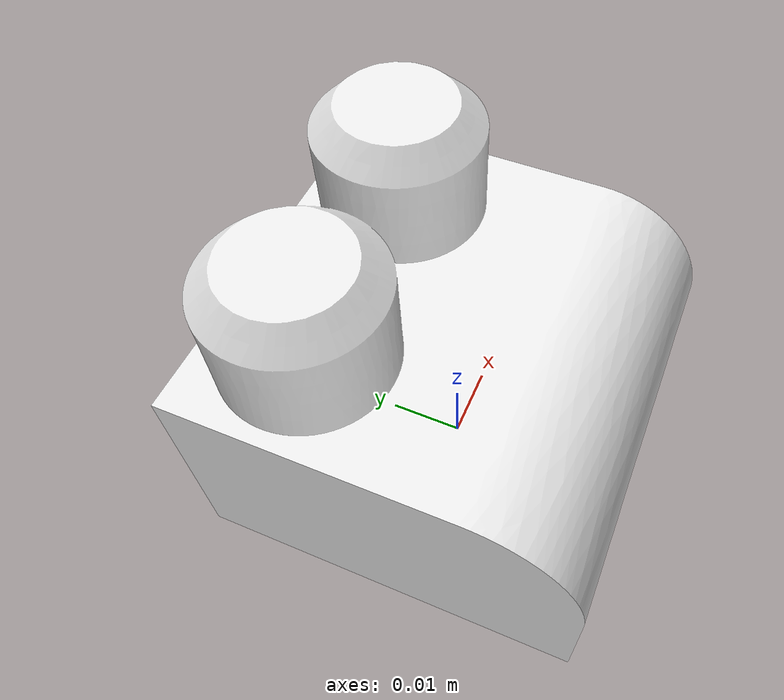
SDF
<?xml version='1.0'?>
<sdf version="1.6">

         <model name="mesh">
             <static>0</static>
             <self_collide>0</self_collide>
             <allow_auto_disable>1</allow_auto_disable>

             <pose>0 0 0 0 -0 0</pose>

             <link name="link">

                 <gravity>1</gravity>
                 <self_collide>0</self_collide>
                 <kinematic>0</kinematic>

                 <pose>0 0 0 0 -0 0</pose>

                 <inertial>

                    <mass> 1.0 </mass>

                    <pose>  3.7870000000e-05  3.4980500000e-03  2.6431550000e-02 0 0 0 </pose>

                    <inertia>
                        <ixx>  6.4404198721e-04 </ixx>
                        <ixy> -4.6866008862e-07 </ixy>
                        <ixz> -9.8230986239e-07 </ixz>
                        <iyy>  6.7759731264e-04 </iyy>
                        <iyz> -7.2469710758e-05 </iyz>
                        <izz>  8.4880617952e-04 </izz>
                    </inertia>
                </inertial>

                 <collision name="collision">

                     <max_contacts>20</max_contacts>

                    <pose>0 0 0 0 -0 0</pose>

                     <geometry>
                         <mesh>
                             <uri>model://X2-Y2-Z2-FILLET/mesh/X2-Y2-Z2-FILLET.stl</uri>

                             <scale>0.8 0.8 0.8</scale>
                         </mesh>
                     </geometry>

                     <surface></surface>
                 </collision>

                 <visual name="visual">
                     <cast_shadows>1</cast_shadows>
                     <transparency>0</transparency>

                   <pose>0 0 0 0 -0 0</pose>

                     <material>

                         <script>
                             <uri>file://media/materials/scripts/gazebo.material</uri>

                             <name>Gazebo/White</name>
                         </script>
                         <shader type="vertex">
                           <normal_map>__default__</normal_map>
                         </shader>

                     </material>

                     <geometry>
                         <mesh>
                             <uri>model://X2-Y2-Z2-FILLET/mesh/X2-Y2-Z2-FILLET.stl</uri>

                             <scale>0.8 0.8 0.8</scale>
                         </mesh>
                     </geometry>
                 </visual>
             </link>
         </model>
     </sdf>
